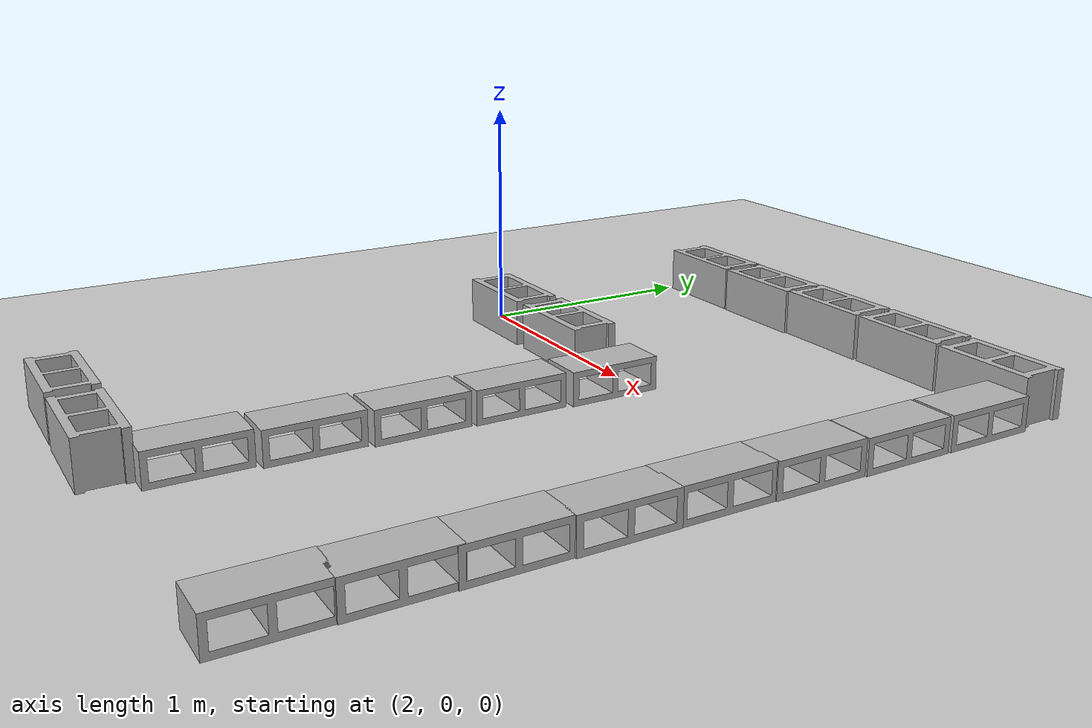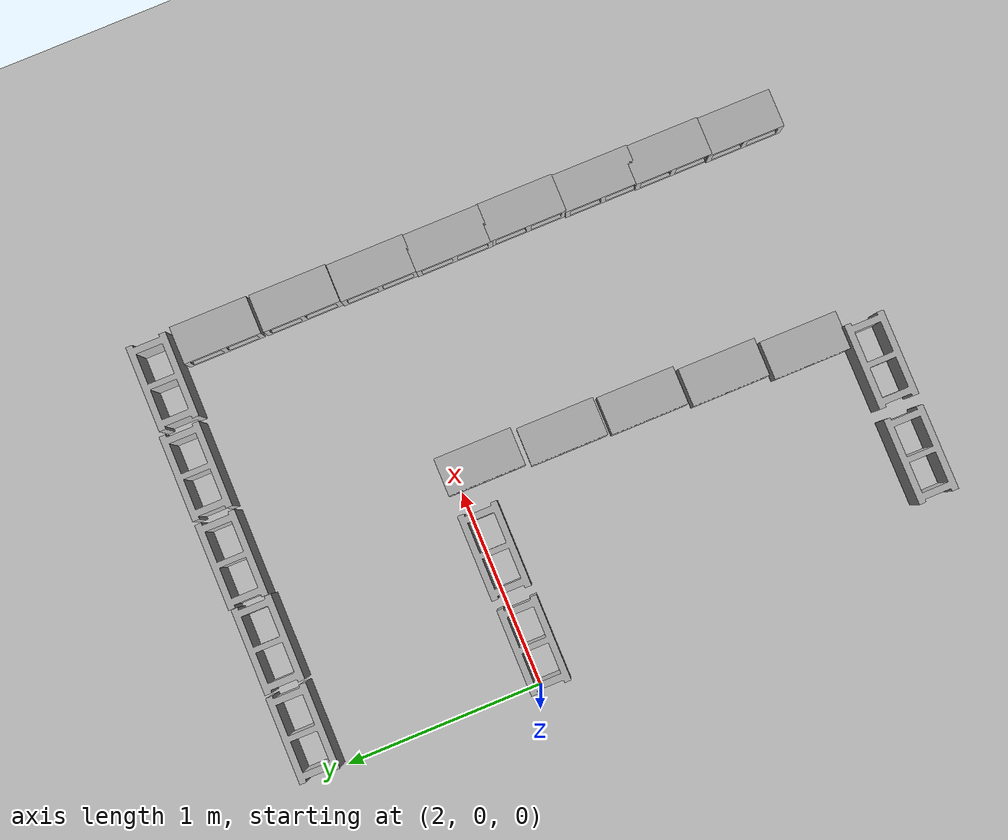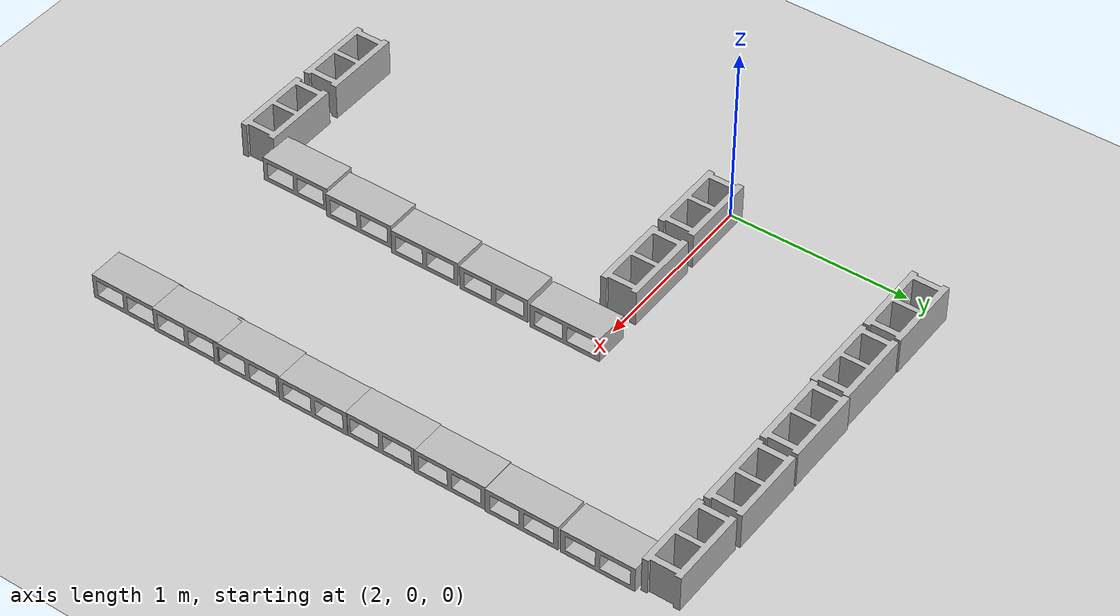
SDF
<sdf version="1.7">
 <world name="default">
  <model name="ground_plane">
   <static>1</static>
   <link name="link">
    <collision name="collision">
     <geometry><plane><normal>0 0 1</normal><size>100 100</size></plane></geometry>
     <surface>
      <contact><collide_bitmask>65535</collide_bitmask></contact>
      <friction><ode><mu>100</mu><mu2>50</mu2></ode></friction>
     </surface>
    </collision>
    <visual name="visual">
     <cast_shadows>0</cast_shadows>
     <geometry><plane><normal>0 0 1</normal><size>100 100</size></plane></geometry>
     <material>
      <script><uri>file://media/materials/scripts/gazebo.material</uri><name>Gazebo/Grey</name></script>
     </material>
    </visual>
   </link>
  </model>
  <model name="cinder_block_5">
   <link name="link">
    <inertial>
     <pose>0 0 0.1016 0 -0 0</pose>
     <mass>5</mass>
     <inertia>
      <ixx>0.028705</ixx>
      <ixy>0</ixy>
      <iyy>0.073708</iyy>
      <ixz>0</ixz>
      <iyz>0</iyz>
      <izz>0.06908</izz>
     </inertia>
    </inertial>
    <visual name="visual">
     <geometry><mesh><uri>model://cinder_block/meshes/cinder_block.dae</uri></mesh></geometry>
    </visual>
    <collision name="left">
     <pose>0 -0.08465 0.1016 0 -0 0</pose>
     <geometry><box><size>0.43495 0.0339 0.2032</size></box></geometry>
     <surface>
      <contact><ode><max_vel>0.1</max_vel><min_depth>0.001</min_depth></ode></contact>
      <friction><ode><mu>1</mu><mu2>1</mu2></ode></friction>
     </surface>
    </collision>
    <collision name="right">
     <pose>0 0.08465 0.1016 0 -0 0</pose>
     <geometry><box><size>0.43495 0.0339 0.2032</size></box></geometry>
     <surface>
      <contact><ode><max_vel>0.1</max_vel><min_depth>0.001</min_depth></ode></contact>
      <friction><ode><mu>1</mu><mu2>1</mu2></ode></friction>
     </surface>
    </collision>
    <collision name="front">
     <pose>0.18625 0 0.1016 0 -0 0</pose>
     <geometry><box><size>0.0339 0.1354 0.203</size></box></geometry>
     <surface>
      <contact><ode><max_vel>0.1</max_vel><min_depth>0.001</min_depth></ode></contact>
      <friction><ode><mu>1</mu><mu2>1</mu2></ode></friction>
     </surface>
    </collision>
    <collision name="middle">
     <pose>0 0 0.1016 0 -0 0</pose>
     <geometry><box><size>0.0339 0.1354 0.203</size></box></geometry>
     <surface>
      <contact><ode><max_vel>0.1</max_vel><min_depth>0.001</min_depth></ode></contact>
      <friction><ode><mu>1</mu><mu2>1</mu2></ode></friction>
     </surface>
    </collision>
    <collision name="back">
     <pose>-0.18625 0 0.1016 0 -0 0</pose>
     <geometry><box><size>0.0339 0.1354 0.203</size></box></geometry>
     <surface>
      <contact><ode><max_vel>0.1</max_vel><min_depth>0.001</min_depth></ode></contact>
      <friction><ode><mu>1</mu><mu2>1</mu2></ode></friction>
     </surface>
    </collision>
   </link>
   <pose>2.1997 -0.048204 0 0 -0 0</pose>
  </model>
  <model name="cinder_block_6">
   <link name="link">
    <inertial>
     <pose>0 0 0.1016 0 -0 0</pose>
     <mass>5</mass>
     <inertia>
      <ixx>0.028705</ixx>
      <ixy>0</ixy>
      <iyy>0.073708</iyy>
      <ixz>0</ixz>
      <iyz>0</iyz>
      <izz>0.06908</izz>
     </inertia>
    </inertial>
    <visual name="visual">
     <geometry><mesh><uri>model://cinder_block/meshes/cinder_block.dae</uri></mesh></geometry>
    </visual>
    <collision name="left">
     <pose>0 -0.08465 0.1016 0 -0 0</pose>
     <geometry><box><size>0.43495 0.0339 0.2032</size></box></geometry>
     <surface>
      <contact><ode><max_vel>0.1</max_vel><min_depth>0.001</min_depth></ode></contact>
      <friction><ode><mu>1</mu><mu2>1</mu2></ode></friction>
     </surface>
    </collision>
    <collision name="right">
     <pose>0 0.08465 0.1016 0 -0 0</pose>
     <geometry><box><size>0.43495 0.0339 0.2032</size></box></geometry>
     <surface>
      <contact><ode><max_vel>0.1</max_vel><min_depth>0.001</min_depth></ode></contact>
      <friction><ode><mu>1</mu><mu2>1</mu2></ode></friction>
     </surface>
    </collision>
    <collision name="front">
     <pose>0.18625 0 0.1016 0 -0 0</pose>
     <geometry><box><size>0.0339 0.1354 0.203</size></box></geometry>
     <surface>
      <contact><ode><max_vel>0.1</max_vel><min_depth>0.001</min_depth></ode></contact>
      <friction><ode><mu>1</mu><mu2>1</mu2></ode></friction>
     </surface>
    </collision>
    <collision name="middle">
     <pose>0 0 0.1016 0 -0 0</pose>
     <geometry><box><size>0.0339 0.1354 0.203</size></box></geometry>
     <surface>
      <contact><ode><max_vel>0.1</max_vel><min_depth>0.001</min_depth></ode></contact>
      <friction><ode><mu>1</mu><mu2>1</mu2></ode></friction>
     </surface>
    </collision>
    <collision name="back">
     <pose>-0.18625 0 0.1016 0 -0 0</pose>
     <geometry><box><size>0.0339 0.1354 0.203</size></box></geometry>
     <surface>
      <contact><ode><max_vel>0.1</max_vel><min_depth>0.001</min_depth></ode></contact>
      <friction><ode><mu>1</mu><mu2>1</mu2></ode></friction>
     </surface>
    </collision>
   </link>
   <pose>2.68308 -0.044089 0 0 -0 0</pose>
  </model>
  <model name="cinder_block_2_3">
   <link name="link">
    <inertial>
     <pose>0 0 0.071438 0 -0 0</pose>
     <mass>5</mass>
     <inertia>
      <ixx>0.06908</ixx>
      <ixy>0</ixy>
      <iyy>0.028705</iyy>
      <ixz>0</ixz>
      <iyz>0</iyz>
      <izz>0.073708</izz>
     </inertia>
    </inertial>
    <visual name="visual">
     <geometry><mesh><uri>model://cinder_block_2/meshes/cinder_block.dae</uri></mesh></geometry>
    </visual>
    <collision name="top">
     <pose>0 0 0.130175 0 -0 0</pose>
     <geometry><box><size>0.19368 0.396875 0.0254</size></box></geometry>
     <surface>
      <contact><ode><max_vel>0.1</max_vel><min_depth>0.001</min_depth></ode></contact>
      <friction><ode><mu>1</mu><mu2>1</mu2></ode></friction>
     </surface>
    </collision>
    <collision name="bottom">
     <pose>0 0 0.0127 0 -0 0</pose>
     <geometry><box><size>0.19368 0.396875 0.0254</size></box></geometry>
     <surface>
      <contact><ode><max_vel>0.1</max_vel><min_depth>0.001</min_depth></ode></contact>
      <friction><ode><mu>1</mu><mu2>1</mu2></ode></friction>
     </surface>
    </collision>
    <collision name="left">
     <pose>0 -0.185738 0.071438 0 -0 0</pose>
     <geometry><box><size>0.19368 0.0254 0.092075</size></box></geometry>
     <surface>
      <contact><ode><max_vel>0.1</max_vel><min_depth>0.001</min_depth></ode></contact>
      <friction><ode><mu>1</mu><mu2>1</mu2></ode></friction>
     </surface>
    </collision>
    <collision name="right">
     <pose>0 0.185738 0.071438 0 -0 0</pose>
     <geometry><box><size>0.19368 0.0254 0.092075</size></box></geometry>
     <surface>
      <contact><ode><max_vel>0.1</max_vel><min_depth>0.001</min_depth></ode></contact>
      <friction><ode><mu>1</mu><mu2>1</mu2></ode></friction>
     </surface>
    </collision>
    <collision name="middle">
     <pose>0 0 0.071438 0 -0 0</pose>
     <geometry><box><size>0.19368 0.0254 0.092075</size></box></geometry>
     <surface>
      <contact><ode><max_vel>0.1</max_vel><min_depth>0.001</min_depth></ode></contact>
      <friction><ode><mu>1</mu><mu2>1</mu2></ode></friction>
     </surface>
    </collision>
   </link>
   <pose>3.10302 -0.137854 0 0 -0 0</pose>
  </model>
  <model name="cinder_block_2_4">
   <link name="link">
    <inertial>
     <pose>0 0 0.071438 0 -0 0</pose>
     <mass>5</mass>
     <inertia>
      <ixx>0.06908</ixx>
      <ixy>0</ixy>
      <iyy>0.028705</iyy>
      <ixz>0</ixz>
      <iyz>0</iyz>
      <izz>0.073708</izz>
     </inertia>
    </inertial>
    <visual name="visual">
     <geometry><mesh><uri>model://cinder_block_2/meshes/cinder_block.dae</uri></mesh></geometry>
    </visual>
    <collision name="top">
     <pose>0 0 0.130175 0 -0 0</pose>
     <geometry><box><size>0.19368 0.396875 0.0254</size></box></geometry>
     <surface>
      <contact><ode><max_vel>0.1</max_vel><min_depth>0.001</min_depth></ode></contact>
      <friction><ode><mu>1</mu><mu2>1</mu2></ode></friction>
     </surface>
    </collision>
    <collision name="bottom">
     <pose>0 0 0.0127 0 -0 0</pose>
     <geometry><box><size>0.19368 0.396875 0.0254</size></box></geometry>
     <surface>
      <contact><ode><max_vel>0.1</max_vel><min_depth>0.001</min_depth></ode></contact>
      <friction><ode><mu>1</mu><mu2>1</mu2></ode></friction>
     </surface>
    </collision>
    <collision name="left">
     <pose>0 -0.185738 0.071438 0 -0 0</pose>
     <geometry><box><size>0.19368 0.0254 0.092075</size></box></geometry>
     <surface>
      <contact><ode><max_vel>0.1</max_vel><min_depth>0.001</min_depth></ode></contact>
      <friction><ode><mu>1</mu><mu2>1</mu2></ode></friction>
     </surface>
    </collision>
    <collision name="right">
     <pose>0 0.185738 0.071438 0 -0 0</pose>
     <geometry><box><size>0.19368 0.0254 0.092075</size></box></geometry>
     <surface>
      <contact><ode><max_vel>0.1</max_vel><min_depth>0.001</min_depth></ode></contact>
      <friction><ode><mu>1</mu><mu2>1</mu2></ode></friction>
     </surface>
    </collision>
    <collision name="middle">
     <pose>0 0 0.071438 0 -0 0</pose>
     <geometry><box><size>0.19368 0.0254 0.092075</size></box></geometry>
     <surface>
      <contact><ode><max_vel>0.1</max_vel><min_depth>0.001</min_depth></ode></contact>
      <friction><ode><mu>1</mu><mu2>1</mu2></ode></friction>
     </surface>
    </collision>
   </link>
   <pose>3.08683 -0.559179 0 0 -0 0</pose>
  </model>
  <model name="cinder_block_2_5">
   <link name="link">
    <inertial>
     <pose>0 0 0.071438 0 -0 0</pose>
     <mass>5</mass>
     <inertia>
      <ixx>0.06908</ixx>
      <ixy>0</ixy>
      <iyy>0.028705</iyy>
      <ixz>0</ixz>
      <iyz>0</iyz>
      <izz>0.073708</izz>
     </inertia>
    </inertial>
    <visual name="visual">
     <geometry><mesh><uri>model://cinder_block_2/meshes/cinder_block.dae</uri></mesh></geometry>
    </visual>
    <collision name="top">
     <pose>0 0 0.130175 0 -0 0</pose>
     <geometry><box><size>0.19368 0.396875 0.0254</size></box></geometry>
     <surface>
      <contact><ode><max_vel>0.1</max_vel><min_depth>0.001</min_depth></ode></contact>
      <friction><ode><mu>1</mu><mu2>1</mu2></ode></friction>
     </surface>
    </collision>
    <collision name="bottom">
     <pose>0 0 0.0127 0 -0 0</pose>
     <geometry><box><size>0.19368 0.396875 0.0254</size></box></geometry>
     <surface>
      <contact><ode><max_vel>0.1</max_vel><min_depth>0.001</min_depth></ode></contact>
      <friction><ode><mu>1</mu><mu2>1</mu2></ode></friction>
     </surface>
    </collision>
    <collision name="left">
     <pose>0 -0.185738 0.071438 0 -0 0</pose>
     <geometry><box><size>0.19368 0.0254 0.092075</size></box></geometry>
     <surface>
      <contact><ode><max_vel>0.1</max_vel><min_depth>0.001</min_depth></ode></contact>
      <friction><ode><mu>1</mu><mu2>1</mu2></ode></friction>
     </surface>
    </collision>
    <collision name="right">
     <pose>0 0.185738 0.071438 0 -0 0</pose>
     <geometry><box><size>0.19368 0.0254 0.092075</size></box></geometry>
     <surface>
      <contact><ode><max_vel>0.1</max_vel><min_depth>0.001</min_depth></ode></contact>
      <friction><ode><mu>1</mu><mu2>1</mu2></ode></friction>
     </surface>
    </collision>
    <collision name="middle">
     <pose>0 0 0.071438 0 -0 0</pose>
     <geometry><box><size>0.19368 0.0254 0.092075</size></box></geometry>
     <surface>
      <contact><ode><max_vel>0.1</max_vel><min_depth>0.001</min_depth></ode></contact>
      <friction><ode><mu>1</mu><mu2>1</mu2></ode></friction>
     </surface>
    </collision>
   </link>
   <pose>3.07753 -0.973132 0 0 -0 0</pose>
  </model>
  <model name="cinder_block_2_6">
   <link name="link">
    <inertial>
     <pose>0 0 0.071438 0 -0 0</pose>
     <mass>5</mass>
     <inertia>
      <ixx>0.06908</ixx>
      <ixy>0</ixy>
      <iyy>0.028705</iyy>
      <ixz>0</ixz>
      <iyz>0</iyz>
      <izz>0.073708</izz>
     </inertia>
    </inertial>
    <visual name="visual">
     <geometry><mesh><uri>model://cinder_block_2/meshes/cinder_block.dae</uri></mesh></geometry>
    </visual>
    <collision name="top">
     <pose>0 0 0.130175 0 -0 0</pose>
     <geometry><box><size>0.19368 0.396875 0.0254</size></box></geometry>
     <surface>
      <contact><ode><max_vel>0.1</max_vel><min_depth>0.001</min_depth></ode></contact>
      <friction><ode><mu>1</mu><mu2>1</mu2></ode></friction>
     </surface>
    </collision>
    <collision name="bottom">
     <pose>0 0 0.0127 0 -0 0</pose>
     <geometry><box><size>0.19368 0.396875 0.0254</size></box></geometry>
     <surface>
      <contact><ode><max_vel>0.1</max_vel><min_depth>0.001</min_depth></ode></contact>
      <friction><ode><mu>1</mu><mu2>1</mu2></ode></friction>
     </surface>
    </collision>
    <collision name="left">
     <pose>0 -0.185738 0.071438 0 -0 0</pose>
     <geometry><box><size>0.19368 0.0254 0.092075</size></box></geometry>
     <surface>
      <contact><ode><max_vel>0.1</max_vel><min_depth>0.001</min_depth></ode></contact>
      <friction><ode><mu>1</mu><mu2>1</mu2></ode></friction>
     </surface>
    </collision>
    <collision name="right">
     <pose>0 0.185738 0.071438 0 -0 0</pose>
     <geometry><box><size>0.19368 0.0254 0.092075</size></box></geometry>
     <surface>
      <contact><ode><max_vel>0.1</max_vel><min_depth>0.001</min_depth></ode></contact>
      <friction><ode><mu>1</mu><mu2>1</mu2></ode></friction>
     </surface>
    </collision>
    <collision name="middle">
     <pose>0 0 0.071438 0 -0 0</pose>
     <geometry><box><size>0.19368 0.0254 0.092075</size></box></geometry>
     <surface>
      <contact><ode><max_vel>0.1</max_vel><min_depth>0.001</min_depth></ode></contact>
      <friction><ode><mu>1</mu><mu2>1</mu2></ode></friction>
     </surface>
    </collision>
   </link>
   <pose>3.05506 -1.38687 0 0 -0 0</pose>
  </model>
  <model name="cinder_block_2_7">
   <link name="link">
    <inertial>
     <pose>0 0 0.071438 0 -0 0</pose>
     <mass>5</mass>
     <inertia>
      <ixx>0.06908</ixx>
      <ixy>0</ixy>
      <iyy>0.028705</iyy>
      <ixz>0</ixz>
      <iyz>0</iyz>
      <izz>0.073708</izz>
     </inertia>
    </inertial>
    <visual name="visual">
     <geometry><mesh><uri>model://cinder_block_2/meshes/cinder_block.dae</uri></mesh></geometry>
    </visual>
    <collision name="top">
     <pose>0 0 0.130175 0 -0 0</pose>
     <geometry><box><size>0.19368 0.396875 0.0254</size></box></geometry>
     <surface>
      <contact><ode><max_vel>0.1</max_vel><min_depth>0.001</min_depth></ode></contact>
      <friction><ode><mu>1</mu><mu2>1</mu2></ode></friction>
     </surface>
    </collision>
    <collision name="bottom">
     <pose>0 0 0.0127 0 -0 0</pose>
     <geometry><box><size>0.19368 0.396875 0.0254</size></box></geometry>
     <surface>
      <contact><ode><max_vel>0.1</max_vel><min_depth>0.001</min_depth></ode></contact>
      <friction><ode><mu>1</mu><mu2>1</mu2></ode></friction>
     </surface>
    </collision>
    <collision name="left">
     <pose>0 -0.185738 0.071438 0 -0 0</pose>
     <geometry><box><size>0.19368 0.0254 0.092075</size></box></geometry>
     <surface>
      <contact><ode><max_vel>0.1</max_vel><min_depth>0.001</min_depth></ode></contact>
      <friction><ode><mu>1</mu><mu2>1</mu2></ode></friction>
     </surface>
    </collision>
    <collision name="right">
     <pose>0 0.185738 0.071438 0 -0 0</pose>
     <geometry><box><size>0.19368 0.0254 0.092075</size></box></geometry>
     <surface>
      <contact><ode><max_vel>0.1</max_vel><min_depth>0.001</min_depth></ode></contact>
      <friction><ode><mu>1</mu><mu2>1</mu2></ode></friction>
     </surface>
    </collision>
    <collision name="middle">
     <pose>0 0 0.071438 0 -0 0</pose>
     <geometry><box><size>0.19368 0.0254 0.092075</size></box></geometry>
     <surface>
      <contact><ode><max_vel>0.1</max_vel><min_depth>0.001</min_depth></ode></contact>
      <friction><ode><mu>1</mu><mu2>1</mu2></ode></friction>
     </surface>
    </collision>
   </link>
   <pose>3.02606 -1.79977 0 0 -0 0</pose>
  </model>
  <model name="cinder_block_7">
   <link name="link">
    <inertial>
     <pose>0 0 0.1016 0 -0 0</pose>
     <mass>5</mass>
     <inertia>
      <ixx>0.028705</ixx>
      <ixy>0</ixy>
      <iyy>0.073708</iyy>
      <ixz>0</ixz>
      <iyz>0</iyz>
      <izz>0.06908</izz>
     </inertia>
    </inertial>
    <visual name="visual">
     <geometry><mesh><uri>model://cinder_block/meshes/cinder_block.dae</uri></mesh></geometry>
    </visual>
    <collision name="left">
     <pose>0 -0.08465 0.1016 0 -0 0</pose>
     <geometry><box><size>0.43495 0.0339 0.2032</size></box></geometry>
     <surface>
      <contact><ode><max_vel>0.1</max_vel><min_depth>0.001</min_depth></ode></contact>
      <friction><ode><mu>1</mu><mu2>1</mu2></ode></friction>
     </surface>
    </collision>
    <collision name="right">
     <pose>0 0.08465 0.1016 0 -0 0</pose>
     <geometry><box><size>0.43495 0.0339 0.2032</size></box></geometry>
     <surface>
      <contact><ode><max_vel>0.1</max_vel><min_depth>0.001</min_depth></ode></contact>
      <friction><ode><mu>1</mu><mu2>1</mu2></ode></friction>
     </surface>
    </collision>
    <collision name="front">
     <pose>0.18625 0 0.1016 0 -0 0</pose>
     <geometry><box><size>0.0339 0.1354 0.203</size></box></geometry>
     <surface>
      <contact><ode><max_vel>0.1</max_vel><min_depth>0.001</min_depth></ode></contact>
      <friction><ode><mu>1</mu><mu2>1</mu2></ode></friction>
     </surface>
    </collision>
    <collision name="middle">
     <pose>0 0 0.1016 0 -0 0</pose>
     <geometry><box><size>0.0339 0.1354 0.203</size></box></geometry>
     <surface>
      <contact><ode><max_vel>0.1</max_vel><min_depth>0.001</min_depth></ode></contact>
      <friction><ode><mu>1</mu><mu2>1</mu2></ode></friction>
     </surface>
    </collision>
    <collision name="back">
     <pose>-0.18625 0 0.1016 0 -0 0</pose>
     <geometry><box><size>0.0339 0.1354 0.203</size></box></geometry>
     <surface>
      <contact><ode><max_vel>0.1</max_vel><min_depth>0.001</min_depth></ode></contact>
      <friction><ode><mu>1</mu><mu2>1</mu2></ode></friction>
     </surface>
    </collision>
   </link>
   <pose>2.82138 -2.09674 0 0 -0 0</pose>
  </model>
  <model name="cinder_block_8">
   <link name="link">
    <inertial>
     <pose>0 0 0.1016 0 -0 0</pose>
     <mass>5</mass>
     <inertia>
      <ixx>0.028705</ixx>
      <ixy>0</ixy>
      <iyy>0.073708</iyy>
      <ixz>0</ixz>
      <iyz>0</iyz>
      <izz>0.06908</izz>
     </inertia>
    </inertial>
    <visual name="visual">
     <geometry><mesh><uri>model://cinder_block/meshes/cinder_block.dae</uri></mesh></geometry>
    </visual>
    <collision name="left">
     <pose>0 -0.08465 0.1016 0 -0 0</pose>
     <geometry><box><size>0.43495 0.0339 0.2032</size></box></geometry>
     <surface>
      <contact><ode><max_vel>0.1</max_vel><min_depth>0.001</min_depth></ode></contact>
      <friction><ode><mu>1</mu><mu2>1</mu2></ode></friction>
     </surface>
    </collision>
    <collision name="right">
     <pose>0 0.08465 0.1016 0 -0 0</pose>
     <geometry><box><size>0.43495 0.0339 0.2032</size></box></geometry>
     <surface>
      <contact><ode><max_vel>0.1</max_vel><min_depth>0.001</min_depth></ode></contact>
      <friction><ode><mu>1</mu><mu2>1</mu2></ode></friction>
     </surface>
    </collision>
    <collision name="front">
     <pose>0.18625 0 0.1016 0 -0 0</pose>
     <geometry><box><size>0.0339 0.1354 0.203</size></box></geometry>
     <surface>
      <contact><ode><max_vel>0.1</max_vel><min_depth>0.001</min_depth></ode></contact>
      <friction><ode><mu>1</mu><mu2>1</mu2></ode></friction>
     </surface>
    </collision>
    <collision name="middle">
     <pose>0 0 0.1016 0 -0 0</pose>
     <geometry><box><size>0.0339 0.1354 0.203</size></box></geometry>
     <surface>
      <contact><ode><max_vel>0.1</max_vel><min_depth>0.001</min_depth></ode></contact>
      <friction><ode><mu>1</mu><mu2>1</mu2></ode></friction>
     </surface>
    </collision>
    <collision name="back">
     <pose>-0.18625 0 0.1016 0 -0 0</pose>
     <geometry><box><size>0.0339 0.1354 0.203</size></box></geometry>
     <surface>
      <contact><ode><max_vel>0.1</max_vel><min_depth>0.001</min_depth></ode></contact>
      <friction><ode><mu>1</mu><mu2>1</mu2></ode></friction>
     </surface>
    </collision>
   </link>
   <pose>2.33341 -2.09364 0 0 -0 0</pose>
  </model>
  <model name="cinder_block_24">
   <link name="link">
    <inertial>
     <pose>0 0 0.1016 0 -0 0</pose>
     <mass>5</mass>
     <inertia>
      <ixx>0.028705</ixx>
      <ixy>0</ixy>
      <iyy>0.073708</iyy>
      <ixz>0</ixz>
      <iyz>0</iyz>
      <izz>0.06908</izz>
     </inertia>
    </inertial>
    <visual name="visual">
     <geometry><mesh><uri>model://cinder_block/meshes/cinder_block.dae</uri></mesh></geometry>
    </visual>
    <collision name="left">
     <pose>0 -0.08465 0.1016 0 -0 0</pose>
     <geometry><box><size>0.43495 0.0339 0.2032</size></box></geometry>
     <surface>
      <contact><ode><max_vel>0.1</max_vel><min_depth>0.001</min_depth></ode></contact>
      <friction><ode><mu>1</mu><mu2>1</mu2></ode></friction>
     </surface>
    </collision>
    <collision name="right">
     <pose>0 0.08465 0.1016 0 -0 0</pose>
     <geometry><box><size>0.43495 0.0339 0.2032</size></box></geometry>
     <surface>
      <contact><ode><max_vel>0.1</max_vel><min_depth>0.001</min_depth></ode></contact>
      <friction><ode><mu>1</mu><mu2>1</mu2></ode></friction>
     </surface>
    </collision>
    <collision name="front">
     <pose>0.18625 0 0.1016 0 -0 0</pose>
     <geometry><box><size>0.0339 0.1354 0.203</size></box></geometry>
     <surface>
      <contact><ode><max_vel>0.1</max_vel><min_depth>0.001</min_depth></ode></contact>
      <friction><ode><mu>1</mu><mu2>1</mu2></ode></friction>
     </surface>
    </collision>
    <collision name="middle">
     <pose>0 0 0.1016 0 -0 0</pose>
     <geometry><box><size>0.0339 0.1354 0.203</size></box></geometry>
     <surface>
      <contact><ode><max_vel>0.1</max_vel><min_depth>0.001</min_depth></ode></contact>
      <friction><ode><mu>1</mu><mu2>1</mu2></ode></friction>
     </surface>
    </collision>
    <collision name="back">
     <pose>-0.18625 0 0.1016 0 -0 0</pose>
     <geometry><box><size>0.0339 0.1354 0.203</size></box></geometry>
     <surface>
      <contact><ode><max_vel>0.1</max_vel><min_depth>0.001</min_depth></ode></contact>
      <friction><ode><mu>1</mu><mu2>1</mu2></ode></friction>
     </surface>
    </collision>
   </link>
   <pose>2.233 1.11525 0 0 -0 0</pose>
  </model>
  <model name="cinder_block_25">
   <link name="link">
    <inertial>
     <pose>0 0 0.1016 0 -0 0</pose>
     <mass>5</mass>
     <inertia>
      <ixx>0.028705</ixx>
      <ixy>0</ixy>
      <iyy>0.073708</iyy>
      <ixz>0</ixz>
      <iyz>0</iyz>
      <izz>0.06908</izz>
     </inertia>
    </inertial>
    <visual name="visual">
     <geometry><mesh><uri>model://cinder_block/meshes/cinder_block.dae</uri></mesh></geometry>
    </visual>
    <collision name="left">
     <pose>0 -0.08465 0.1016 0 -0 0</pose>
     <geometry><box><size>0.43495 0.0339 0.2032</size></box></geometry>
     <surface>
      <contact><ode><max_vel>0.1</max_vel><min_depth>0.001</min_depth></ode></contact>
      <friction><ode><mu>1</mu><mu2>1</mu2></ode></friction>
     </surface>
    </collision>
    <collision name="right">
     <pose>0 0.08465 0.1016 0 -0 0</pose>
     <geometry><box><size>0.43495 0.0339 0.2032</size></box></geometry>
     <surface>
      <contact><ode><max_vel>0.1</max_vel><min_depth>0.001</min_depth></ode></contact>
      <friction><ode><mu>1</mu><mu2>1</mu2></ode></friction>
     </surface>
    </collision>
    <collision name="front">
     <pose>0.18625 0 0.1016 0 -0 0</pose>
     <geometry><box><size>0.0339 0.1354 0.203</size></box></geometry>
     <surface>
      <contact><ode><max_vel>0.1</max_vel><min_depth>0.001</min_depth></ode></contact>
      <friction><ode><mu>1</mu><mu2>1</mu2></ode></friction>
     </surface>
    </collision>
    <collision name="middle">
     <pose>0 0 0.1016 0 -0 0</pose>
     <geometry><box><size>0.0339 0.1354 0.203</size></box></geometry>
     <surface>
      <contact><ode><max_vel>0.1</max_vel><min_depth>0.001</min_depth></ode></contact>
      <friction><ode><mu>1</mu><mu2>1</mu2></ode></friction>
     </surface>
    </collision>
    <collision name="back">
     <pose>-0.18625 0 0.1016 0 -0 0</pose>
     <geometry><box><size>0.0339 0.1354 0.203</size></box></geometry>
     <surface>
      <contact><ode><max_vel>0.1</max_vel><min_depth>0.001</min_depth></ode></contact>
      <friction><ode><mu>1</mu><mu2>1</mu2></ode></friction>
     </surface>
    </collision>
   </link>
   <pose>2.68102 1.11215 0 0 -0 0</pose>
  </model>
  <model name="cinder_block_26">
   <link name="link">
    <inertial>
     <pose>0 0 0.1016 0 -0 0</pose>
     <mass>5</mass>
     <inertia>
      <ixx>0.028705</ixx>
      <ixy>0</ixy>
      <iyy>0.073708</iyy>
      <ixz>0</ixz>
      <iyz>0</iyz>
      <izz>0.06908</izz>
     </inertia>
    </inertial>
    <visual name="visual">
     <geometry><mesh><uri>model://cinder_block/meshes/cinder_block.dae</uri></mesh></geometry>
    </visual>
    <collision name="left">
     <pose>0 -0.08465 0.1016 0 -0 0</pose>
     <geometry><box><size>0.43495 0.0339 0.2032</size></box></geometry>
     <surface>
      <contact><ode><max_vel>0.1</max_vel><min_depth>0.001</min_depth></ode></contact>
      <friction><ode><mu>1</mu><mu2>1</mu2></ode></friction>
     </surface>
    </collision>
    <collision name="right">
     <pose>0 0.08465 0.1016 0 -0 0</pose>
     <geometry><box><size>0.43495 0.0339 0.2032</size></box></geometry>
     <surface>
      <contact><ode><max_vel>0.1</max_vel><min_depth>0.001</min_depth></ode></contact>
      <friction><ode><mu>1</mu><mu2>1</mu2></ode></friction>
     </surface>
    </collision>
    <collision name="front">
     <pose>0.18625 0 0.1016 0 -0 0</pose>
     <geometry><box><size>0.0339 0.1354 0.203</size></box></geometry>
     <surface>
      <contact><ode><max_vel>0.1</max_vel><min_depth>0.001</min_depth></ode></contact>
      <friction><ode><mu>1</mu><mu2>1</mu2></ode></friction>
     </surface>
    </collision>
    <collision name="middle">
     <pose>0 0 0.1016 0 -0 0</pose>
     <geometry><box><size>0.0339 0.1354 0.203</size></box></geometry>
     <surface>
      <contact><ode><max_vel>0.1</max_vel><min_depth>0.001</min_depth></ode></contact>
      <friction><ode><mu>1</mu><mu2>1</mu2></ode></friction>
     </surface>
    </collision>
    <collision name="back">
     <pose>-0.18625 0 0.1016 0 -0 0</pose>
     <geometry><box><size>0.0339 0.1354 0.203</size></box></geometry>
     <surface>
      <contact><ode><max_vel>0.1</max_vel><min_depth>0.001</min_depth></ode></contact>
      <friction><ode><mu>1</mu><mu2>1</mu2></ode></friction>
     </surface>
    </collision>
   </link>
   <pose>3.11794 1.12289 0 0 -0 0</pose>
  </model>
  <model name="cinder_block_27">
   <link name="link">
    <inertial>
     <pose>0 0 0.1016 0 -0 0</pose>
     <mass>5</mass>
     <inertia>
      <ixx>0.028705</ixx>
      <ixy>0</ixy>
      <iyy>0.073708</iyy>
      <ixz>0</ixz>
      <iyz>0</iyz>
      <izz>0.06908</izz>
     </inertia>
    </inertial>
    <visual name="visual">
     <geometry><mesh><uri>model://cinder_block/meshes/cinder_block.dae</uri></mesh></geometry>
    </visual>
    <collision name="left">
     <pose>0 -0.08465 0.1016 0 -0 0</pose>
     <geometry><box><size>0.43495 0.0339 0.2032</size></box></geometry>
     <surface>
      <contact><ode><max_vel>0.1</max_vel><min_depth>0.001</min_depth></ode></contact>
      <friction><ode><mu>1</mu><mu2>1</mu2></ode></friction>
     </surface>
    </collision>
    <collision name="right">
     <pose>0 0.08465 0.1016 0 -0 0</pose>
     <geometry><box><size>0.43495 0.0339 0.2032</size></box></geometry>
     <surface>
      <contact><ode><max_vel>0.1</max_vel><min_depth>0.001</min_depth></ode></contact>
      <friction><ode><mu>1</mu><mu2>1</mu2></ode></friction>
     </surface>
    </collision>
    <collision name="front">
     <pose>0.18625 0 0.1016 0 -0 0</pose>
     <geometry><box><size>0.0339 0.1354 0.203</size></box></geometry>
     <surface>
      <contact><ode><max_vel>0.1</max_vel><min_depth>0.001</min_depth></ode></contact>
      <friction><ode><mu>1</mu><mu2>1</mu2></ode></friction>
     </surface>
    </collision>
    <collision name="middle">
     <pose>0 0 0.1016 0 -0 0</pose>
     <geometry><box><size>0.0339 0.1354 0.203</size></box></geometry>
     <surface>
      <contact><ode><max_vel>0.1</max_vel><min_depth>0.001</min_depth></ode></contact>
      <friction><ode><mu>1</mu><mu2>1</mu2></ode></friction>
     </surface>
    </collision>
    <collision name="back">
     <pose>-0.18625 0 0.1016 0 -0 0</pose>
     <geometry><box><size>0.0339 0.1354 0.203</size></box></geometry>
     <surface>
      <contact><ode><max_vel>0.1</max_vel><min_depth>0.001</min_depth></ode></contact>
      <friction><ode><mu>1</mu><mu2>1</mu2></ode></friction>
     </surface>
    </collision>
   </link>
   <pose>3.57186 1.12501 0 0 -0 0</pose>
  </model>
  <model name="cinder_block_28">
   <link name="link">
    <inertial>
     <pose>0 0 0.1016 0 -0 0</pose>
     <mass>5</mass>
     <inertia>
      <ixx>0.028705</ixx>
      <ixy>0</ixy>
      <iyy>0.073708</iyy>
      <ixz>0</ixz>
      <iyz>0</iyz>
      <izz>0.06908</izz>
     </inertia>
    </inertial>
    <visual name="visual">
     <geometry><mesh><uri>model://cinder_block/meshes/cinder_block.dae</uri></mesh></geometry>
    </visual>
    <collision name="left">
     <pose>0 -0.08465 0.1016 0 -0 0</pose>
     <geometry><box><size>0.43495 0.0339 0.2032</size></box></geometry>
     <surface>
      <contact><ode><max_vel>0.1</max_vel><min_depth>0.001</min_depth></ode></contact>
      <friction><ode><mu>1</mu><mu2>1</mu2></ode></friction>
     </surface>
    </collision>
    <collision name="right">
     <pose>0 0.08465 0.1016 0 -0 0</pose>
     <geometry><box><size>0.43495 0.0339 0.2032</size></box></geometry>
     <surface>
      <contact><ode><max_vel>0.1</max_vel><min_depth>0.001</min_depth></ode></contact>
      <friction><ode><mu>1</mu><mu2>1</mu2></ode></friction>
     </surface>
    </collision>
    <collision name="front">
     <pose>0.18625 0 0.1016 0 -0 0</pose>
     <geometry><box><size>0.0339 0.1354 0.203</size></box></geometry>
     <surface>
      <contact><ode><max_vel>0.1</max_vel><min_depth>0.001</min_depth></ode></contact>
      <friction><ode><mu>1</mu><mu2>1</mu2></ode></friction>
     </surface>
    </collision>
    <collision name="middle">
     <pose>0 0 0.1016 0 -0 0</pose>
     <geometry><box><size>0.0339 0.1354 0.203</size></box></geometry>
     <surface>
      <contact><ode><max_vel>0.1</max_vel><min_depth>0.001</min_depth></ode></contact>
      <friction><ode><mu>1</mu><mu2>1</mu2></ode></friction>
     </surface>
    </collision>
    <collision name="back">
     <pose>-0.18625 0 0.1016 0 -0 0</pose>
     <geometry><box><size>0.0339 0.1354 0.203</size></box></geometry>
     <surface>
      <contact><ode><max_vel>0.1</max_vel><min_depth>0.001</min_depth></ode></contact>
      <friction><ode><mu>1</mu><mu2>1</mu2></ode></friction>
     </surface>
    </collision>
   </link>
   <pose>4.02974 1.11405 0 0 -0 0</pose>
  </model>
  <model name="cinder_block_2_13">
   <link name="link">
    <inertial>
     <pose>0 0 0.071438 0 -0 0</pose>
     <mass>5</mass>
     <inertia>
      <ixx>0.06908</ixx>
      <ixy>0</ixy>
      <iyy>0.028705</iyy>
      <ixz>0</ixz>
      <iyz>0</iyz>
      <izz>0.073708</izz>
     </inertia>
    </inertial>
    <visual name="visual">
     <geometry><mesh><uri>model://cinder_block_2/meshes/cinder_block.dae</uri></mesh></geometry>
    </visual>
    <collision name="top">
     <pose>0 0 0.130175 0 -0 0</pose>
     <geometry><box><size>0.19368 0.396875 0.0254</size></box></geometry>
     <surface>
      <contact><ode><max_vel>0.1</max_vel><min_depth>0.001</min_depth></ode></contact>
      <friction><ode><mu>1</mu><mu2>1</mu2></ode></friction>
     </surface>
    </collision>
    <collision name="bottom">
     <pose>0 0 0.0127 0 -0 0</pose>
     <geometry><box><size>0.19368 0.396875 0.0254</size></box></geometry>
     <surface>
      <contact><ode><max_vel>0.1</max_vel><min_depth>0.001</min_depth></ode></contact>
      <friction><ode><mu>1</mu><mu2>1</mu2></ode></friction>
     </surface>
    </collision>
    <collision name="left">
     <pose>0 -0.185738 0.071438 0 -0 0</pose>
     <geometry><box><size>0.19368 0.0254 0.092075</size></box></geometry>
     <surface>
      <contact><ode><max_vel>0.1</max_vel><min_depth>0.001</min_depth></ode></contact>
      <friction><ode><mu>1</mu><mu2>1</mu2></ode></friction>
     </surface>
    </collision>
    <collision name="right">
     <pose>0 0.185738 0.071438 0 -0 0</pose>
     <geometry><box><size>0.19368 0.0254 0.092075</size></box></geometry>
     <surface>
      <contact><ode><max_vel>0.1</max_vel><min_depth>0.001</min_depth></ode></contact>
      <friction><ode><mu>1</mu><mu2>1</mu2></ode></friction>
     </surface>
    </collision>
    <collision name="middle">
     <pose>0 0 0.071438 0 -0 0</pose>
     <geometry><box><size>0.19368 0.0254 0.092075</size></box></geometry>
     <surface>
      <contact><ode><max_vel>0.1</max_vel><min_depth>0.001</min_depth></ode></contact>
      <friction><ode><mu>1</mu><mu2>1</mu2></ode></friction>
     </surface>
    </collision>
   </link>
   <pose>4.17417 0.798819 0 0 -0 0</pose>
  </model>
  <model name="cinder_block_2_14">
   <link name="link">
    <inertial>
     <pose>0 0 0.071438 0 -0 0</pose>
     <mass>5</mass>
     <inertia>
      <ixx>0.06908</ixx>
      <ixy>0</ixy>
      <iyy>0.028705</iyy>
      <ixz>0</ixz>
      <iyz>0</iyz>
      <izz>0.073708</izz>
     </inertia>
    </inertial>
    <visual name="visual">
     <geometry><mesh><uri>model://cinder_block_2/meshes/cinder_block.dae</uri></mesh></geometry>
    </visual>
    <collision name="top">
     <pose>0 0 0.130175 0 -0 0</pose>
     <geometry><box><size>0.19368 0.396875 0.0254</size></box></geometry>
     <surface>
      <contact><ode><max_vel>0.1</max_vel><min_depth>0.001</min_depth></ode></contact>
      <friction><ode><mu>1</mu><mu2>1</mu2></ode></friction>
     </surface>
    </collision>
    <collision name="bottom">
     <pose>0 0 0.0127 0 -0 0</pose>
     <geometry><box><size>0.19368 0.396875 0.0254</size></box></geometry>
     <surface>
      <contact><ode><max_vel>0.1</max_vel><min_depth>0.001</min_depth></ode></contact>
      <friction><ode><mu>1</mu><mu2>1</mu2></ode></friction>
     </surface>
    </collision>
    <collision name="left">
     <pose>0 -0.185738 0.071438 0 -0 0</pose>
     <geometry><box><size>0.19368 0.0254 0.092075</size></box></geometry>
     <surface>
      <contact><ode><max_vel>0.1</max_vel><min_depth>0.001</min_depth></ode></contact>
      <friction><ode><mu>1</mu><mu2>1</mu2></ode></friction>
     </surface>
    </collision>
    <collision name="right">
     <pose>0 0.185738 0.071438 0 -0 0</pose>
     <geometry><box><size>0.19368 0.0254 0.092075</size></box></geometry>
     <surface>
      <contact><ode><max_vel>0.1</max_vel><min_depth>0.001</min_depth></ode></contact>
      <friction><ode><mu>1</mu><mu2>1</mu2></ode></friction>
     </surface>
    </collision>
    <collision name="middle">
     <pose>0 0 0.071438 0 -0 0</pose>
     <geometry><box><size>0.19368 0.0254 0.092075</size></box></geometry>
     <surface>
      <contact><ode><max_vel>0.1</max_vel><min_depth>0.001</min_depth></ode></contact>
      <friction><ode><mu>1</mu><mu2>1</mu2></ode></friction>
     </surface>
    </collision>
   </link>
   <pose>4.17261 0.388866 0 0 -0 0</pose>
  </model>
  <model name="cinder_block_2_15">
   <link name="link">
    <inertial>
     <pose>0 0 0.071438 0 -0 0</pose>
     <mass>5</mass>
     <inertia>
      <ixx>0.06908</ixx>
      <ixy>0</ixy>
      <iyy>0.028705</iyy>
      <ixz>0</ixz>
      <iyz>0</iyz>
      <izz>0.073708</izz>
     </inertia>
    </inertial>
    <visual name="visual">
     <geometry><mesh><uri>model://cinder_block_2/meshes/cinder_block.dae</uri></mesh></geometry>
    </visual>
    <collision name="top">
     <pose>0 0 0.130175 0 -0 0</pose>
     <geometry><box><size>0.19368 0.396875 0.0254</size></box></geometry>
     <surface>
      <contact><ode><max_vel>0.1</max_vel><min_depth>0.001</min_depth></ode></contact>
      <friction><ode><mu>1</mu><mu2>1</mu2></ode></friction>
     </surface>
    </collision>
    <collision name="bottom">
     <pose>0 0 0.0127 0 -0 0</pose>
     <geometry><box><size>0.19368 0.396875 0.0254</size></box></geometry>
     <surface>
      <contact><ode><max_vel>0.1</max_vel><min_depth>0.001</min_depth></ode></contact>
      <friction><ode><mu>1</mu><mu2>1</mu2></ode></friction>
     </surface>
    </collision>
    <collision name="left">
     <pose>0 -0.185738 0.071438 0 -0 0</pose>
     <geometry><box><size>0.19368 0.0254 0.092075</size></box></geometry>
     <surface>
      <contact><ode><max_vel>0.1</max_vel><min_depth>0.001</min_depth></ode></contact>
      <friction><ode><mu>1</mu><mu2>1</mu2></ode></friction>
     </surface>
    </collision>
    <collision name="right">
     <pose>0 0.185738 0.071438 0 -0 0</pose>
     <geometry><box><size>0.19368 0.0254 0.092075</size></box></geometry>
     <surface>
      <contact><ode><max_vel>0.1</max_vel><min_depth>0.001</min_depth></ode></contact>
      <friction><ode><mu>1</mu><mu2>1</mu2></ode></friction>
     </surface>
    </collision>
    <collision name="middle">
     <pose>0 0 0.071438 0 -0 0</pose>
     <geometry><box><size>0.19368 0.0254 0.092075</size></box></geometry>
     <surface>
      <contact><ode><max_vel>0.1</max_vel><min_depth>0.001</min_depth></ode></contact>
      <friction><ode><mu>1</mu><mu2>1</mu2></ode></friction>
     </surface>
    </collision>
   </link>
   <pose>4.16642 -0.010707 0 0 -0 0</pose>
  </model>
  <model name="cinder_block_2_16">
   <link name="link">
    <inertial>
     <pose>0 0 0.071438 0 -0 0</pose>
     <mass>5</mass>
     <inertia>
      <ixx>0.06908</ixx>
      <ixy>0</ixy>
      <iyy>0.028705</iyy>
      <ixz>0</ixz>
      <iyz>0</iyz>
      <izz>0.073708</izz>
     </inertia>
    </inertial>
    <visual name="visual">
     <geometry><mesh><uri>model://cinder_block_2/meshes/cinder_block.dae</uri></mesh></geometry>
    </visual>
    <collision name="top">
     <pose>0 0 0.130175 0 -0 0</pose>
     <geometry><box><size>0.19368 0.396875 0.0254</size></box></geometry>
     <surface>
      <contact><ode><max_vel>0.1</max_vel><min_depth>0.001</min_depth></ode></contact>
      <friction><ode><mu>1</mu><mu2>1</mu2></ode></friction>
     </surface>
    </collision>
    <collision name="bottom">
     <pose>0 0 0.0127 0 -0 0</pose>
     <geometry><box><size>0.19368 0.396875 0.0254</size></box></geometry>
     <surface>
      <contact><ode><max_vel>0.1</max_vel><min_depth>0.001</min_depth></ode></contact>
      <friction><ode><mu>1</mu><mu2>1</mu2></ode></friction>
     </surface>
    </collision>
    <collision name="left">
     <pose>0 -0.185738 0.071438 0 -0 0</pose>
     <geometry><box><size>0.19368 0.0254 0.092075</size></box></geometry>
     <surface>
      <contact><ode><max_vel>0.1</max_vel><min_depth>0.001</min_depth></ode></contact>
      <friction><ode><mu>1</mu><mu2>1</mu2></ode></friction>
     </surface>
    </collision>
    <collision name="right">
     <pose>0 0.185738 0.071438 0 -0 0</pose>
     <geometry><box><size>0.19368 0.0254 0.092075</size></box></geometry>
     <surface>
      <contact><ode><max_vel>0.1</max_vel><min_depth>0.001</min_depth></ode></contact>
      <friction><ode><mu>1</mu><mu2>1</mu2></ode></friction>
     </surface>
    </collision>
    <collision name="middle">
     <pose>0 0 0.071438 0 -0 0</pose>
     <geometry><box><size>0.19368 0.0254 0.092075</size></box></geometry>
     <surface>
      <contact><ode><max_vel>0.1</max_vel><min_depth>0.001</min_depth></ode></contact>
      <friction><ode><mu>1</mu><mu2>1</mu2></ode></friction>
     </surface>
    </collision>
   </link>
   <pose>4.16173 -0.400642 0 0 -0 0</pose>
  </model>
  <model name="cinder_block_2_17">
   <link name="link">
    <inertial>
     <pose>0 0 0.071438 0 -0 0</pose>
     <mass>5</mass>
     <inertia>
      <ixx>0.06908</ixx>
      <ixy>0</ixy>
      <iyy>0.028705</iyy>
      <ixz>0</ixz>
      <iyz>0</iyz>
      <izz>0.073708</izz>
     </inertia>
    </inertial>
    <visual name="visual">
     <geometry><mesh><uri>model://cinder_block_2/meshes/cinder_block.dae</uri></mesh></geometry>
    </visual>
    <collision name="top">
     <pose>0 0 0.130175 0 -0 0</pose>
     <geometry><box><size>0.19368 0.396875 0.0254</size></box></geometry>
     <surface>
      <contact><ode><max_vel>0.1</max_vel><min_depth>0.001</min_depth></ode></contact>
      <friction><ode><mu>1</mu><mu2>1</mu2></ode></friction>
     </surface>
    </collision>
    <collision name="bottom">
     <pose>0 0 0.0127 0 -0 0</pose>
     <geometry><box><size>0.19368 0.396875 0.0254</size></box></geometry>
     <surface>
      <contact><ode><max_vel>0.1</max_vel><min_depth>0.001</min_depth></ode></contact>
      <friction><ode><mu>1</mu><mu2>1</mu2></ode></friction>
     </surface>
    </collision>
    <collision name="left">
     <pose>0 -0.185738 0.071438 0 -0 0</pose>
     <geometry><box><size>0.19368 0.0254 0.092075</size></box></geometry>
     <surface>
      <contact><ode><max_vel>0.1</max_vel><min_depth>0.001</min_depth></ode></contact>
      <friction><ode><mu>1</mu><mu2>1</mu2></ode></friction>
     </surface>
    </collision>
    <collision name="right">
     <pose>0 0.185738 0.071438 0 -0 0</pose>
     <geometry><box><size>0.19368 0.0254 0.092075</size></box></geometry>
     <surface>
      <contact><ode><max_vel>0.1</max_vel><min_depth>0.001</min_depth></ode></contact>
      <friction><ode><mu>1</mu><mu2>1</mu2></ode></friction>
     </surface>
    </collision>
    <collision name="middle">
     <pose>0 0 0.071438 0 -0 0</pose>
     <geometry><box><size>0.19368 0.0254 0.092075</size></box></geometry>
     <surface>
      <contact><ode><max_vel>0.1</max_vel><min_depth>0.001</min_depth></ode></contact>
      <friction><ode><mu>1</mu><mu2>1</mu2></ode></friction>
     </surface>
    </collision>
   </link>
   <pose>4.16383 -0.787823 0 0 -0 0</pose>
  </model>
  <model name="cinder_block_2_18">
   <link name="link">
    <inertial>
     <pose>0 0 0.071438 0 -0 0</pose>
     <mass>5</mass>
     <inertia>
      <ixx>0.06908</ixx>
      <ixy>0</ixy>
      <iyy>0.028705</iyy>
      <ixz>0</ixz>
      <iyz>0</iyz>
      <izz>0.073708</izz>
     </inertia>
    </inertial>
    <visual name="visual">
     <geometry><mesh><uri>model://cinder_block_2/meshes/cinder_block.dae</uri></mesh></geometry>
    </visual>
    <collision name="top">
     <pose>0 0 0.130175 0 -0 0</pose>
     <geometry><box><size>0.19368 0.396875 0.0254</size></box></geometry>
     <surface>
      <contact><ode><max_vel>0.1</max_vel><min_depth>0.001</min_depth></ode></contact>
      <friction><ode><mu>1</mu><mu2>1</mu2></ode></friction>
     </surface>
    </collision>
    <collision name="bottom">
     <pose>0 0 0.0127 0 -0 0</pose>
     <geometry><box><size>0.19368 0.396875 0.0254</size></box></geometry>
     <surface>
      <contact><ode><max_vel>0.1</max_vel><min_depth>0.001</min_depth></ode></contact>
      <friction><ode><mu>1</mu><mu2>1</mu2></ode></friction>
     </surface>
    </collision>
    <collision name="left">
     <pose>0 -0.185738 0.071438 0 -0 0</pose>
     <geometry><box><size>0.19368 0.0254 0.092075</size></box></geometry>
     <surface>
      <contact><ode><max_vel>0.1</max_vel><min_depth>0.001</min_depth></ode></contact>
      <friction><ode><mu>1</mu><mu2>1</mu2></ode></friction>
     </surface>
    </collision>
    <collision name="right">
     <pose>0 0.185738 0.071438 0 -0 0</pose>
     <geometry><box><size>0.19368 0.0254 0.092075</size></box></geometry>
     <surface>
      <contact><ode><max_vel>0.1</max_vel><min_depth>0.001</min_depth></ode></contact>
      <friction><ode><mu>1</mu><mu2>1</mu2></ode></friction>
     </surface>
    </collision>
    <collision name="middle">
     <pose>0 0 0.071438 0 -0 0</pose>
     <geometry><box><size>0.19368 0.0254 0.092075</size></box></geometry>
     <surface>
      <contact><ode><max_vel>0.1</max_vel><min_depth>0.001</min_depth></ode></contact>
      <friction><ode><mu>1</mu><mu2>1</mu2></ode></friction>
     </surface>
    </collision>
   </link>
   <pose>4.15692 -1.17915 0 0 -0 0</pose>
  </model>
  <model name="cinder_block_2_19">
   <link name="link">
    <inertial>
     <pose>0 0 0.071438 0 -0 0</pose>
     <mass>5</mass>
     <inertia>
      <ixx>0.06908</ixx>
      <ixy>0</ixy>
      <iyy>0.028705</iyy>
      <ixz>0</ixz>
      <iyz>0</iyz>
      <izz>0.073708</izz>
     </inertia>
    </inertial>
    <visual name="visual">
     <geometry><mesh><uri>model://cinder_block_2/meshes/cinder_block.dae</uri></mesh></geometry>
    </visual>
    <collision name="top">
     <pose>0 0 0.130175 0 -0 0</pose>
     <geometry><box><size>0.19368 0.396875 0.0254</size></box></geometry>
     <surface>
      <contact><ode><max_vel>0.1</max_vel><min_depth>0.001</min_depth></ode></contact>
      <friction><ode><mu>1</mu><mu2>1</mu2></ode></friction>
     </surface>
    </collision>
    <collision name="bottom">
     <pose>0 0 0.0127 0 -0 0</pose>
     <geometry><box><size>0.19368 0.396875 0.0254</size></box></geometry>
     <surface>
      <contact><ode><max_vel>0.1</max_vel><min_depth>0.001</min_depth></ode></contact>
      <friction><ode><mu>1</mu><mu2>1</mu2></ode></friction>
     </surface>
    </collision>
    <collision name="left">
     <pose>0 -0.185738 0.071438 0 -0 0</pose>
     <geometry><box><size>0.19368 0.0254 0.092075</size></box></geometry>
     <surface>
      <contact><ode><max_vel>0.1</max_vel><min_depth>0.001</min_depth></ode></contact>
      <friction><ode><mu>1</mu><mu2>1</mu2></ode></friction>
     </surface>
    </collision>
    <collision name="right">
     <pose>0 0.185738 0.071438 0 -0 0</pose>
     <geometry><box><size>0.19368 0.0254 0.092075</size></box></geometry>
     <surface>
      <contact><ode><max_vel>0.1</max_vel><min_depth>0.001</min_depth></ode></contact>
      <friction><ode><mu>1</mu><mu2>1</mu2></ode></friction>
     </surface>
    </collision>
    <collision name="middle">
     <pose>0 0 0.071438 0 -0 0</pose>
     <geometry><box><size>0.19368 0.0254 0.092075</size></box></geometry>
     <surface>
      <contact><ode><max_vel>0.1</max_vel><min_depth>0.001</min_depth></ode></contact>
      <friction><ode><mu>1</mu><mu2>1</mu2></ode></friction>
     </surface>
    </collision>
   </link>
   <pose>4.15221 -1.54656 0 0 -0 0</pose>
  </model>
  <model name="cinder_block_2_20">
   <link name="link">
    <inertial>
     <pose>0 0 0.071438 0 -0 0</pose>
     <mass>5</mass>
     <inertia>
      <ixx>0.06908</ixx>
      <ixy>0</ixy>
      <iyy>0.028705</iyy>
      <ixz>0</ixz>
      <iyz>0</iyz>
      <izz>0.073708</izz>
     </inertia>
    </inertial>
    <visual name="visual">
     <geometry><mesh><uri>model://cinder_block_2/meshes/cinder_block.dae</uri></mesh></geometry>
    </visual>
    <collision name="top">
     <pose>0 0 0.130175 0 -0 0</pose>
     <geometry><box><size>0.19368 0.396875 0.0254</size></box></geometry>
     <surface>
      <contact><ode><max_vel>0.1</max_vel><min_depth>0.001</min_depth></ode></contact>
      <friction><ode><mu>1</mu><mu2>1</mu2></ode></friction>
     </surface>
    </collision>
    <collision name="bottom">
     <pose>0 0 0.0127 0 -0 0</pose>
     <geometry><box><size>0.19368 0.396875 0.0254</size></box></geometry>
     <surface>
      <contact><ode><max_vel>0.1</max_vel><min_depth>0.001</min_depth></ode></contact>
      <friction><ode><mu>1</mu><mu2>1</mu2></ode></friction>
     </surface>
    </collision>
    <collision name="left">
     <pose>0 -0.185738 0.071438 0 -0 0</pose>
     <geometry><box><size>0.19368 0.0254 0.092075</size></box></geometry>
     <surface>
      <contact><ode><max_vel>0.1</max_vel><min_depth>0.001</min_depth></ode></contact>
      <friction><ode><mu>1</mu><mu2>1</mu2></ode></friction>
     </surface>
    </collision>
    <collision name="right">
     <pose>0 0.185738 0.071438 0 -0 0</pose>
     <geometry><box><size>0.19368 0.0254 0.092075</size></box></geometry>
     <surface>
      <contact><ode><max_vel>0.1</max_vel><min_depth>0.001</min_depth></ode></contact>
      <friction><ode><mu>1</mu><mu2>1</mu2></ode></friction>
     </surface>
    </collision>
    <collision name="middle">
     <pose>0 0 0.071438 0 -0 0</pose>
     <geometry><box><size>0.19368 0.0254 0.092075</size></box></geometry>
     <surface>
      <contact><ode><max_vel>0.1</max_vel><min_depth>0.001</min_depth></ode></contact>
      <friction><ode><mu>1</mu><mu2>1</mu2></ode></friction>
     </surface>
    </collision>
   </link>
   <pose>4.14666 -1.92229 0 0 -0 0</pose>
  </model>
 </world>
</sdf>
